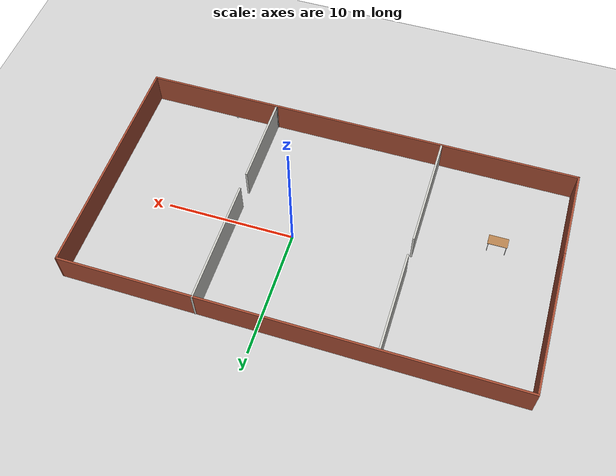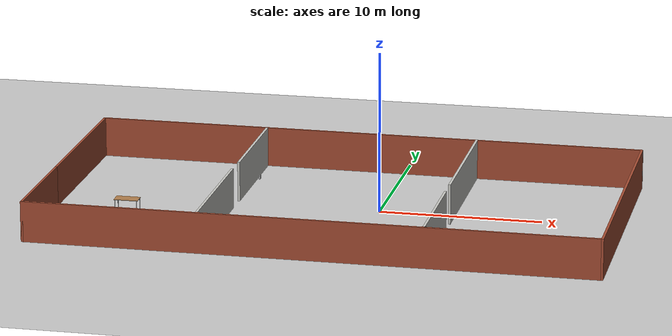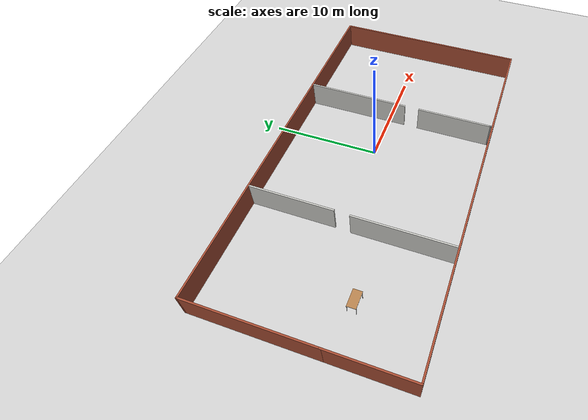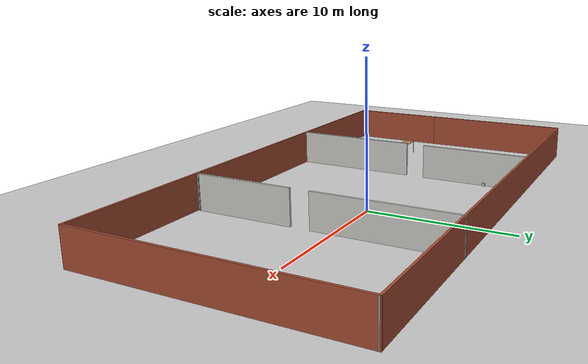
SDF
<sdf version="1.7">
 <world name="default">
  <model name="ground_plane">
   <static>1</static>
   <link name="ground_plane_link">
    <collision name="ground_plane_collision">
     <geometry><plane><normal>0 0 1</normal><size>100 100</size></plane></geometry>
     <surface><friction><ode><mu>100</mu><mu2>50</mu2></ode></friction></surface>
    </collision>
    <visual name="ground_plane_visual">
     <cast_shadows>0</cast_shadows>
     <geometry><plane><normal>0 0 1</normal><size>100 100</size></plane></geometry>
     <material>
      <script><uri>file://media/materials/scripts/gazebo.material</uri><name>Gazebo/Grey</name></script>
     </material>
    </visual>
   </link>
  </model>
  <light name="sun" type="directional">
   <pose>0 0 10 0 -0 0</pose>
   <diffuse>0.8 0.8 0.8 1</diffuse>
   <specular>0.2 0.2 0.2 1</specular>
   <attenuation>
    <range>1000</range>
    <constant>0.9</constant>
    <linear>0.01</linear>
    <quadratic>0.001</quadratic>
   </attenuation>
   <direction>-0.5 0.1 -0.9</direction>
   <spot><inner_angle>0</inner_angle><outer_angle>0</outer_angle><falloff>0</falloff></spot>
  </light>
  <scene><shadows>0</shadows><ambient>0.4 0.4 0.4 1</ambient><background>0.7 0.7 0.7 1</background></scene>
  <physics type="ode">
   <real_time_update_rate>1000</real_time_update_rate>
   <max_step_size>0.001</max_step_size>
   <real_time_factor>1</real_time_factor>
   <ode>
    <solver>
     <type>quick</type>
     <iters>150</iters>
     <precon_iters>0</precon_iters>
     <sor>1.4</sor>
     <use_dynamic_moi_rescaling>1</use_dynamic_moi_rescaling>
    </solver>
    <constraints>
     <cfm>1e-05</cfm>
     <erp>0.2</erp>
     <contact_max_correcting_vel>2000</contact_max_correcting_vel>
     <contact_surface_layer>0.01</contact_surface_layer>
    </constraints>
   </ode>
  </physics>
  <gravity>0 0 -9.8</gravity>
  <magnetic_field>6e-06 2.3e-05 -4.2e-05</magnetic_field>
  <atmosphere type="adiabatic"/>
  <audio><device>default</device></audio>
  <spherical_coordinates>
   <surface_model>EARTH_WGS84</surface_model>
   <latitude_deg>0</latitude_deg>
   <longitude_deg>0</longitude_deg>
   <elevation>0</elevation>
   <heading_deg>0</heading_deg>
  </spherical_coordinates>
  <model name="building_plan">
   <pose>-2.3042 -0.900061 0 0 -0 0</pose>
   <link name="wall_1">
    <collision name="wall_1_collision">
     <geometry><box><size>11.25 0.15 2.5</size></box></geometry>
     <pose>0 0 1.25 0 -0 0</pose>
    </collision>
    <visual name="wall_1_visual">
     <pose>0 0 1.25 0 -0 0</pose>
     <geometry><box><size>11.25 0.15 2.5</size></box></geometry>
     <material>
      <script><uri>file://media/materials/scripts/gazebo.material</uri><name>Gazebo/Bricks</name></script>
      <ambient>1 1 1 1</ambient>
     </material>
     <meta><layer>0</layer></meta>
    </visual>
    <pose>-17.3 3.52962 0 0 -0 -1.5708</pose>
   </link>
   <link name="wall_10">
    <collision name="wall_10_collision">
     <geometry><box><size>34.7503 0.15 2.5</size></box></geometry>
     <pose>0 0 1.25 0 -0 0</pose>
    </collision>
    <visual name="wall_10_visual">
     <pose>0 0 1.25 0 -0 0</pose>
     <geometry><box><size>34.7503 0.15 2.5</size></box></geometry>
     <material>
      <script><uri>file://media/materials/scripts/gazebo.material</uri><name>Gazebo/Bricks</name></script>
      <ambient>1 1 1 1</ambient>
     </material>
     <meta><layer>0</layer></meta>
    </visual>
    <pose>0 9.04985 0 0 -0 3.13753</pose>
   </link>
   <link name="wall_12">
    <collision name="wall_12_collision">
     <geometry><box><size>7.75 0.15 2.5</size></box></geometry>
     <pose>0 0 1.25 0 -0 0</pose>
    </collision>
    <visual name="wall_12_visual">
     <pose>0 0 1.25 0 -0 0</pose>
     <geometry><box><size>7.75 0.15 2.5</size></box></geometry>
     <material>
      <script><uri>file://media/materials/scripts/gazebo.material</uri><name>Gazebo/CeilingTiled</name></script>
      <ambient>1 0.764706 0.305882 1</ambient>
     </material>
     <meta><layer>0</layer></meta>
    </visual>
    <pose>-6.60613 5.16103 0 0 -0 -1.5708</pose>
   </link>
   <link name="wall_16">
    <collision name="wall_16_collision">
     <geometry><box><size>9 0.15 2.5</size></box></geometry>
     <pose>0 0 1.25 0 -0 0</pose>
    </collision>
    <visual name="wall_16_visual">
     <pose>0 0 1.25 0 -0 0</pose>
     <geometry><box><size>9 0.15 2.5</size></box></geometry>
     <material>
      <script><uri>file://media/materials/scripts/gazebo.material</uri><name>Gazebo/CeilingTiled</name></script>
      <ambient>1 0.764706 0.305882 1</ambient>
     </material>
     <meta><layer>0</layer></meta>
    </visual>
    <pose>-6.66648 -4.58386 0 0 -0 -1.5708</pose>
   </link>
   <link name="wall_20">
    <collision name="wall_20_collision">
     <geometry><box><size>9.75 0.15 2.5</size></box></geometry>
     <pose>0 0 1.25 0 -0 0</pose>
    </collision>
    <visual name="wall_20_visual">
     <pose>0 0 1.25 0 -0 0</pose>
     <geometry><box><size>9.75 0.15 2.5</size></box></geometry>
     <material>
      <script><uri>file://media/materials/scripts/gazebo.material</uri><name>Gazebo/CeilingTiled</name></script>
      <ambient>0.996078 0.47451 0.0196078 1</ambient>
     </material>
     <meta><layer>0</layer></meta>
    </visual>
    <pose>6.88947 4.24159 0 0 -0 -1.5708</pose>
   </link>
   <link name="wall_22">
    <collision name="wall_22_collision">
     <geometry><box><size>7 0.15 2.5</size></box></geometry>
     <pose>0 0 1.25 0 -0 0</pose>
    </collision>
    <visual name="wall_22_visual">
     <pose>0 0 1.25 0 -0 0</pose>
     <geometry><box><size>7 0.15 2.5</size></box></geometry>
     <material>
      <script><uri>file://media/materials/scripts/gazebo.material</uri><name>Gazebo/CeilingTiled</name></script>
      <ambient>0.996078 0.47451 0.0196078 1</ambient>
     </material>
     <meta><layer>0</layer></meta>
    </visual>
    <pose>6.88221 -5.48423 0 0 -0 -1.5708</pose>
   </link>
   <link name="wall_23">
    <collision name="wall_23_collision">
     <geometry><box><size>0.25 0.15 2.5</size></box></geometry>
     <pose>0 0 1.25 0 -0 0</pose>
    </collision>
    <visual name="wall_23_visual">
     <pose>0 0 1.25 0 -0 0</pose>
     <geometry><box><size>0.25 0.15 2.5</size></box></geometry>
     <material>
      <script><uri>file://media/materials/scripts/gazebo.material</uri><name>Gazebo/Grey</name></script>
      <ambient>1 1 1 1</ambient>
     </material>
     <meta><layer>0</layer></meta>
    </visual>
    <pose>6.86927 -8.95752 0 0 -0 -1.8326</pose>
   </link>
   <link name="wall_24">
    <collision name="wall_24_collision">
     <geometry><box><size>0.25 0.15 2.5</size></box></geometry>
     <pose>0 0 1.25 0 -0 0</pose>
    </collision>
    <visual name="wall_24_visual">
     <pose>0 0 1.25 0 -0 0</pose>
     <geometry><box><size>0.25 0.15 2.5</size></box></geometry>
     <material>
      <script><uri>file://media/materials/scripts/gazebo.material</uri><name>Gazebo/Grey</name></script>
      <ambient>1 1 1 1</ambient>
     </material>
     <meta><layer>0</layer></meta>
    </visual>
    <pose>6.86927 -8.95752 0 0 -0 1.309</pose>
   </link>
   <link name="wall_5">
    <collision name="wall_5_collision">
     <geometry><box><size>7.29046 0.15 2.5</size></box></geometry>
     <pose>0 0 1.25 0 -0 0</pose>
    </collision>
    <visual name="wall_5_visual">
     <pose>0 0 1.25 0 -0 0</pose>
     <geometry><box><size>7.29046 0.15 2.5</size></box></geometry>
     <material>
      <script><uri>file://media/materials/scripts/gazebo.material</uri><name>Gazebo/Bricks</name></script>
      <ambient>1 1 1 1</ambient>
     </material>
     <meta><layer>0</layer></meta>
    </visual>
    <pose>-17.3 -5.55015 0 0 -0 -1.5708</pose>
   </link>
   <link name="wall_6">
    <collision name="wall_6_collision">
     <geometry><box><size>34.75 0.15 2.5</size></box></geometry>
     <pose>0 0 1.25 0 -0 0</pose>
    </collision>
    <visual name="wall_6_visual">
     <pose>0 0 1.25 0 -0 0</pose>
     <geometry><box><size>34.75 0.15 2.5</size></box></geometry>
     <material>
      <script><uri>file://media/materials/scripts/gazebo.material</uri><name>Gazebo/Bricks</name></script>
      <ambient>1 1 1 1</ambient>
     </material>
     <meta><layer>0</layer></meta>
    </visual>
    <pose>0 -9.12038 0 0 -0 0</pose>
   </link>
   <link name="wall_8">
    <collision name="wall_8_collision">
     <geometry><box><size>18.25 0.15 2.5</size></box></geometry>
     <pose>0 0 1.25 0 -0 0</pose>
    </collision>
    <visual name="wall_8_visual">
     <pose>0 0 1.25 0 -0 0</pose>
     <geometry><box><size>18.25 0.15 2.5</size></box></geometry>
     <material>
      <script><uri>file://media/materials/scripts/gazebo.material</uri><name>Gazebo/Bricks</name></script>
      <ambient>1 1 1 1</ambient>
     </material>
     <meta><layer>0</layer></meta>
    </visual>
    <pose>17.3 -0.070379 0 0 -0 1.5708</pose>
   </link>
   <link name="wall_9">
    <collision name="wall_9_collision">
     <geometry><box><size>0.15 0.15 2.5</size></box></geometry>
     <pose>0 0 1.25 0 -0 0</pose>
    </collision>
    <visual name="wall_9_visual">
     <pose>0 0 1.25 0 -0 0</pose>
     <geometry><box><size>0.15 0.15 2.5</size></box></geometry>
     <material>
      <script><uri>file://media/materials/scripts/gazebo.material</uri><name>Gazebo/Grey</name></script>
      <ambient>1 1 1 1</ambient>
     </material>
     <meta><layer>0</layer></meta>
    </visual>
    <pose>17.3 8.97962 0 0 -0 0</pose>
   </link>
   <static>1</static>
  </model>
  <model name="table">
   <static>1</static>
   <link name="table_body">
    <collision name="table_body_collision">
     <pose>0 0 1 0 -0 0</pose>
     <geometry><box><size>1.5 0.8 0.03</size></box></geometry>
     <surface><friction><ode><mu>0.6</mu><mu2>0.6</mu2></ode></friction></surface>
    </collision>
    <visual name="table_body_visual">
     <pose>0 0 1 0 -0 0</pose>
     <geometry><box><size>1.5 0.8 0.03</size></box></geometry>
     <material>
      <diffuse>1 1 1 1</diffuse>
      <script><uri>file://media/materials/scripts/gazebo.material</uri><name>Gazebo/Wood</name></script>
      <pbr><metal><albedo_map>model://Table/Table_Diffuse.jpg</albedo_map></metal></pbr>
     </material>
    </visual>
    <collision name="front_left_leg_collsion">
     <pose>0.68 0.38 0.5 0 -0 0</pose>
     <geometry><cylinder><radius>0.02</radius><length>1</length></cylinder></geometry>
    </collision>
    <visual name="front_left_leg_visual">
     <pose>0.68 0.38 0.5 0 -0 0</pose>
     <geometry><cylinder><radius>0.02</radius><length>1</length></cylinder></geometry>
     <material>
      <diffuse>0.5 0.5 0.5 1</diffuse>
      <script><uri>file://media/materials/scripts/gazebo.material</uri><name>Gazebo/Grey</name></script>
     </material>
    </visual>
    <collision name="front_right_leg_collision">
     <pose>0.68 -0.38 0.5 0 -0 0</pose>
     <geometry><cylinder><radius>0.02</radius><length>1</length></cylinder></geometry>
    </collision>
    <visual name="front_right_leg_visual">
     <pose>0.68 -0.38 0.5 0 -0 0</pose>
     <geometry><cylinder><radius>0.02</radius><length>1</length></cylinder></geometry>
     <material>
      <diffuse>0.5 0.5 0.5 1</diffuse>
      <script><uri>file://media/materials/scripts/gazebo.material</uri><name>Gazebo/Grey</name></script>
     </material>
    </visual>
    <collision name="back_right_leg_collision">
     <pose>-0.68 -0.38 0.5 0 -0 0</pose>
     <geometry><cylinder><radius>0.02</radius><length>1</length></cylinder></geometry>
    </collision>
    <visual name="back_right_leg_visual">
     <pose>-0.68 -0.38 0.5 0 -0 0</pose>
     <geometry><cylinder><radius>0.02</radius><length>1</length></cylinder></geometry>
     <material>
      <diffuse>0.5 0.5 0.5 1</diffuse>
      <script><uri>file://media/materials/scripts/gazebo.material</uri><name>Gazebo/Grey</name></script>
     </material>
    </visual>
    <collision name="back_left_leg_collision">
     <pose>-0.68 0.38 0.5 0 -0 0</pose>
     <geometry><cylinder><radius>0.02</radius><length>1</length></cylinder></geometry>
    </collision>
    <visual name="back_left_leg_visual">
     <pose>-0.68 0.38 0.5 0 -0 0</pose>
     <geometry><cylinder><radius>0.02</radius><length>1</length></cylinder></geometry>
     <material>
      <diffuse>0.5 0.5 0.5 1</diffuse>
      <script><uri>file://media/materials/scripts/gazebo.material</uri><name>Gazebo/Grey</name></script>
     </material>
    </visual>
   </link>
   <pose>-14.9207 -3.58092 0 0 -0 0</pose>
  </model>
  <model name="aruco_marker_0">
   <link name="aruco_marker_0_link">
    <inertial>
     <mass>0.001</mass>
     <inertia>
      <ixx>3.75e-06</ixx>
      <ixy>0</ixy>
      <ixz>0</ixz>
      <iyy>1.875e-06</iyy>
      <iyz>0</iyz>
      <izz>1.875e-06</izz>
     </inertia>
    </inertial>
    <visual name="aruco_marker_0_front_visual">
     <pose>5e-05 0 0 0 -0 0</pose>
     <geometry><box><size>0.0001 0.15 0.15</size></box></geometry>
     <material>
      <script>
       <uri>model://aruco_marker/materials/scripts</uri>
       <uri>model://aruco_marker/materials/textures</uri>
       <name>Marker</name>
      </script>
     </material>
    </visual>
    <visual name="aruco_marker_0_rear_visual">
     <pose>-5e-05 0 0 0 -0 0</pose>
     <geometry><box><size>0.0001 0.15 0.15</size></box></geometry>
    </visual>
    <collision name="aruco_marker_0_collision">
     <geometry><box><size>0.0001 0.15 0.15</size></box></geometry>
    </collision>
   </link>
   <pose>8.03376 -9.8274 0.114001 0 -5e-06 1.57079</pose>
  </model>
  <model name="aruco_marker_1">
   <link name="aruco_marker_1_link">
    <inertial>
     <mass>0.001</mass>
     <inertia>
      <ixx>3.75e-06</ixx>
      <ixy>0</ixy>
      <ixz>0</ixz>
      <iyy>1.875e-06</iyy>
      <iyz>0</iyz>
      <izz>1.875e-06</izz>
     </inertia>
    </inertial>
    <visual name="aruco_marker_1_front_visual">
     <pose>5e-05 0 0 0 -0 0</pose>
     <geometry><box><size>0.102665 0.223995 0.228006</size></box></geometry>
     <material>
      <script>
       <uri>model://aruco_marker/materials/scripts</uri>
       <uri>model://aruco_marker/materials/textures</uri>
       <name>Marker</name>
      </script>
     </material>
    </visual>
    <visual name="aruco_marker_1_rear_visual">
     <pose>-5e-05 0 0 0 -0 0</pose>
     <geometry><box><size>0.102665 0.223995 0.228006</size></box></geometry>
    </visual>
    <collision name="aruco_marker_1_collision">
     <geometry><box><size>0.102665 0.223995 0.228006</size></box></geometry>
    </collision>
   </link>
   <pose>-8.71999 5.19836 0.114002 0 -8e-06 -0.027291</pose>
  </model>
  <static>1</static>
  <link name="conf_table_2_body">
   <visual name="conf_table_2_visual">
    <geometry><mesh><uri>model://ConfTable/meshes/ConfTable.obj</uri></mesh></geometry>
   </visual>
   <collision name="conf_table_2_collision">
    <geometry><mesh><uri>model://ConfTable/meshes/ConfTable_Col.obj</uri></mesh></geometry>
   </collision>
  </link>
  <pose>10.7171 2.78411 0 0 0 -1.57121</pose>
 </world>
</sdf>
